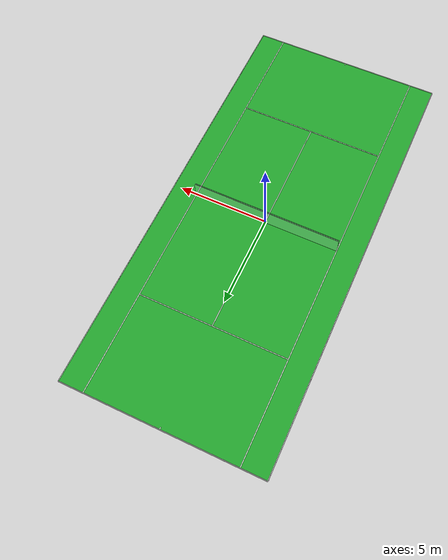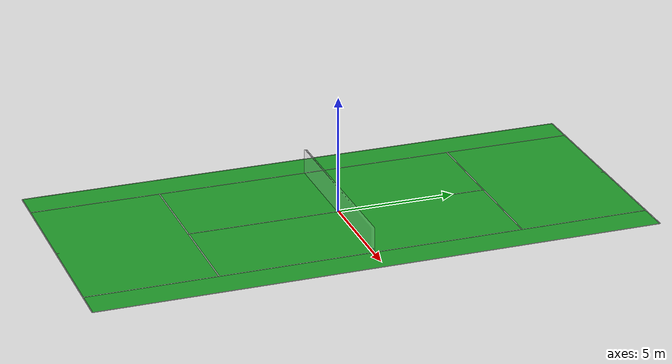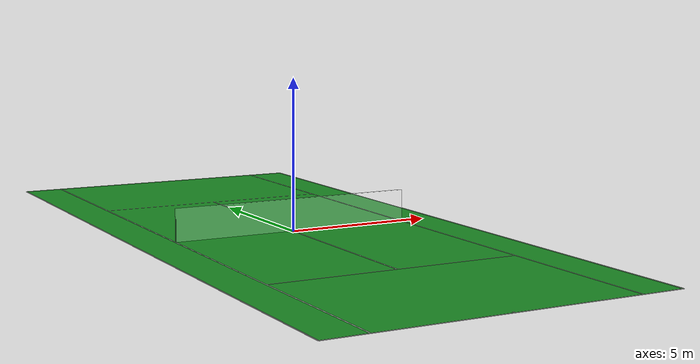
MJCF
<mujoco model="tennis_court">
  <asset>
    <texture name="tennis_court_tex" type="2d" file="tennis/tennis_court_green.png" />
    <material name="tennis_court_material" texture="tennis_court_tex" texuniform="true" texrepeat="1 1" reflectance="0.03" />
  </asset>
  <worldbody>
    <body name="tennis_court_root" pos="0 0 0">
      <geom name="court_visual" type="box" pos="0 0 0.001" size="5.485 11.885 0.001" material="tennis_court_material" contype="0" conaffinity="0" />
      <!-- ITF-correct line layout (all lines at 5cm width -> half-width 0.025m):
           doubles width 10.97m, singles width 8.23m, service line distance 6.40m -->
      <geom name="court_left_line" type="box" pos="-5.485 0 0.002" size="0.025 11.885 0.0005" rgba="0.94 0.94 0.94 1.0" contype="0" conaffinity="0" />
      <geom name="court_right_line" type="box" pos="5.485 0 0.002" size="0.025 11.885 0.0005" rgba="0.94 0.94 0.94 1.0" contype="0" conaffinity="0" />
      <geom name="court_left_singles_line" type="box" pos="-4.115 0 0.002" size="0.025 11.885 0.0005" rgba="0.94 0.94 0.94 1.0" contype="0" conaffinity="0" />
      <geom name="court_right_singles_line" type="box" pos="4.115 0 0.002" size="0.025 11.885 0.0005" rgba="0.94 0.94 0.94 1.0" contype="0" conaffinity="0" />
      <geom name="court_service_line_near" type="box" pos="0 -6.40 0.002" size="4.115 0.025 0.0005" rgba="0.94 0.94 0.94 1.0" contype="0" conaffinity="0" />
      <geom name="court_service_line_far" type="box" pos="0 6.40 0.002" size="4.115 0.025 0.0005" rgba="0.94 0.94 0.94 1.0" contype="0" conaffinity="0" />
      <geom name="court_center_service_line_near" type="box" pos="0 -3.20 0.002" size="0.025 3.20 0.0005" rgba="0.94 0.94 0.94 1.0" contype="0" conaffinity="0" />
      <geom name="court_center_service_line_far" type="box" pos="0 3.20 0.002" size="0.025 3.20 0.0005" rgba="0.94 0.94 0.94 1.0" contype="0" conaffinity="0" />
      <geom name="court_baseline_near" type="box" pos="0 -11.885 0.002" size="5.485 0.025 0.0005" rgba="0.94 0.94 0.94 1.0" contype="0" conaffinity="0" />
      <geom name="court_baseline_far" type="box" pos="0 11.885 0.002" size="5.485 0.025 0.0005" rgba="0.94 0.94 0.94 1.0" contype="0" conaffinity="0" />
      <geom name="court_center_mark_near" type="box" pos="0 -11.81 0.002" size="0.025 0.05 0.0005" rgba="0.94 0.94 0.94 1.0" contype="0" conaffinity="0" />
      <geom name="court_center_mark_far" type="box" pos="0 11.81 0.002" size="0.025 0.05 0.0005" rgba="0.94 0.94 0.94 1.0" contype="0" conaffinity="0" />
      <geom name="tennis_net_visual" type="box" pos="0 0 0.535" size="4.11 0.02 0.535" rgba="0.9 0.9 0.9 0.4" contype="0" conaffinity="0" />
      <geom name="tennis_net_collision" type="box" pos="0 0 0.535" size="4.11 0.06 0.535" rgba="0.9 0.9 0.9 0.05" condim="3" friction="0.80 0.05 0.01" contype="4" conaffinity="0" />
      <geom name="tennis_court_ball_collision" type="box" pos="0 0 0.008" size="5.485 11.885 0.008" rgba="0.1 0.9 0.1 0.02" condim="3" friction="0.45 0.01 0.001" solref="0.010 0.080" contype="0" conaffinity="0" />
      <geom name="tennis_court_racket_collision" type="box" pos="0 0 0.01" size="5.485 11.885 0.01" rgba="0.1 0.6 0.1 0.03" condim="3" friction="0.90 0.05 0.01" contype="0" conaffinity="0" />
    </body>
  </worldbody>
</mujoco>
